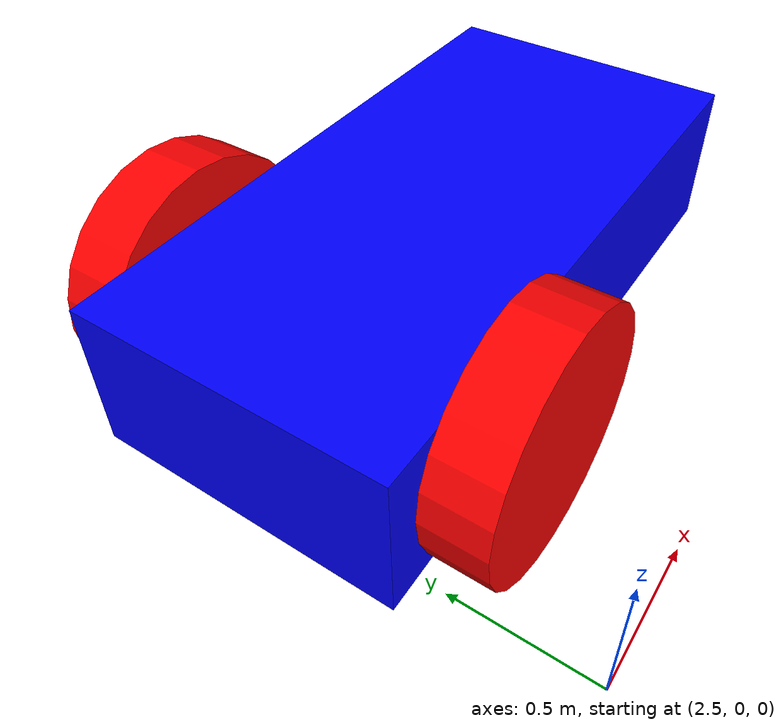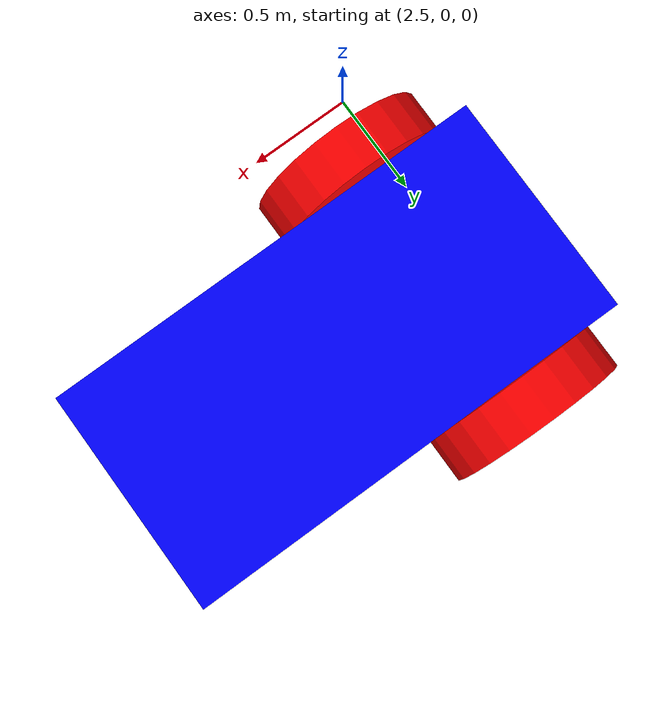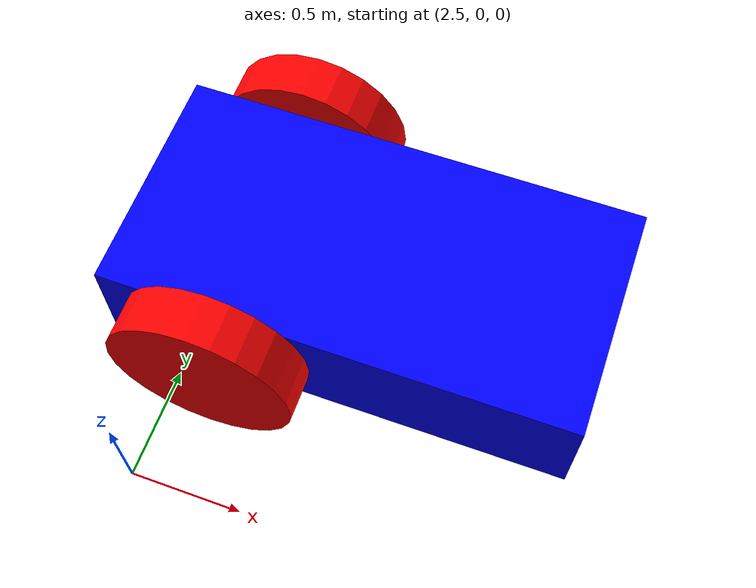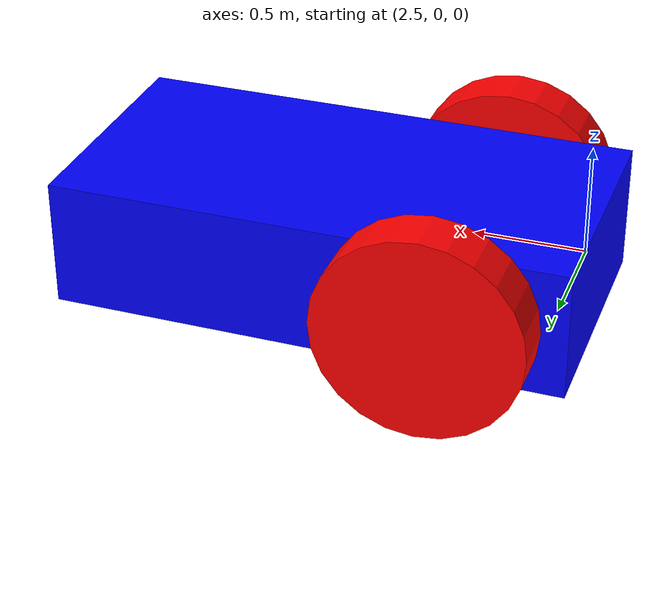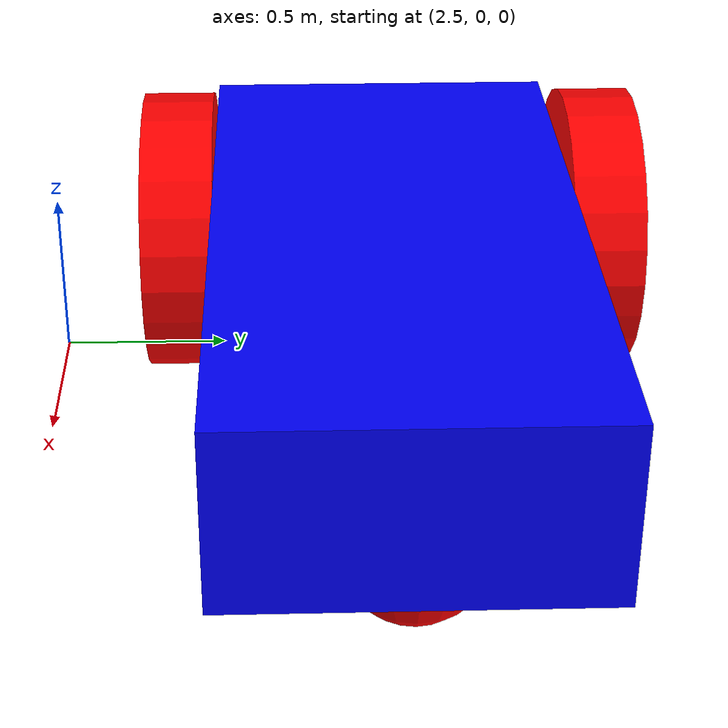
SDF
<sdf version="1.7">
 <world name="world_demo">
  <physics name="1ms" type="ignored">
   <max_step_size>0.01</max_step_size>
   <real_time_factor>1</real_time_factor>
  </physics>
  <plugin name="ignition::gazebo::systems::Physics" filename="libignition-gazebo-physics-system.so"/>
  <plugin name="ignition::gazebo::systems::UserCommands" filename="libignition-gazebo-user-commands-system.so"/>
  <plugin name="ignition::gazebo::systems::SceneBroadcaster" filename="libignition-gazebo-scene-broadcaster-system.so"/>
  <plugin name="ignition::gazebo::systems::Imu" filename="ignition-gazebo-imu-system"/>
  <plugin name="ignition::gazebo::systems::Sensors" filename="ignition-gazebo-sensors-system">
   <render_engine>ogre2</render_engine>
  </plugin>
  <scene>
   <ambient>1 1 1 1</ambient>
   <background>0.3 0.7 0.9 1</background>
   <shadows>0</shadows>
   <grid>1</grid>
  </scene>
  <model name="ground_plane">
   <static>1</static>
   <link name="link">
    <collision name="collision">
     <geometry><plane><normal>0 0 1</normal><size>1 1</size></plane></geometry>
    </collision>
   </link>
  </model>
  <model name="depot_collision">
   <static>1</static>
   <pose>7.19009 1.09982 0 0 0 0</pose>
   <link name="collision_link">
    <collision name="wall1">
     <pose>0 -7.6129 4.5 0 0 0</pose>
     <geometry><box><size>30.167 0.08 9</size></box></geometry>
    </collision>
    <collision name="wall2">
     <pose>0 7.2875 4.5 0 0 0</pose>
     <geometry><box><size>30.167 0.08 9</size></box></geometry>
    </collision>
    <collision name="wall3">
     <pose>-15 0 4.5 0 0 0</pose>
     <geometry><box><size>0.08 15.360 9</size></box></geometry>
    </collision>
    <collision name="wall4">
     <pose>15 0 4.5 0 0 0</pose>
     <geometry><box><size>0.08 15.360 9</size></box></geometry>
    </collision>
    <collision name="boxes1">
     <pose>0.22268 -4.7268 0.68506 0 0 0</pose>
     <geometry><box><size>1.288 1.422 1.288</size></box></geometry>
    </collision>
    <collision name="boxes2">
     <pose>3.1727 -4.7268 0.68506 0 0 0</pose>
     <geometry><box><size>1.288 1.422 1.288</size></box></geometry>
    </collision>
    <collision name="boxes3">
     <pose>5.95268 -4.7268 0.68506 0 0 0</pose>
     <geometry><box><size>1.288 1.422 1.288</size></box></geometry>
    </collision>
    <collision name="boxes4">
     <pose>8.55887 -4.7268 0.68506 0 0 0</pose>
     <geometry><box><size>1.288 1.422 1.288</size></box></geometry>
    </collision>
    <collision name="boxes5">
     <pose>11.326 -4.7268 0.68506 0 0 0</pose>
     <geometry><box><size>1.288 1.422 1.288</size></box></geometry>
    </collision>
    <collision name="boxes6">
     <pose>0.22268 -2.37448 0.68506 0 0 0</pose>
     <geometry><box><size>1.288 1.422 1.288</size></box></geometry>
    </collision>
    <collision name="boxes7">
     <pose>3.1727 -2.37448 0.68506 0 0 0</pose>
     <geometry><box><size>1.288 1.422 1.288</size></box></geometry>
    </collision>
    <collision name="boxes8">
     <pose>5.95268 -2.37448 0.68506 0 0 0</pose>
     <geometry><box><size>1.288 1.422 1.288</size></box></geometry>
    </collision>
    <collision name="boxes9">
     <pose>8.55887 -2.37448 0.68506 0 0 0</pose>
     <geometry><box><size>1.288 1.422 1.288</size></box></geometry>
    </collision>
    <collision name="boxes10">
     <pose>11.326 -2.37448 0.68506 0 0 0</pose>
     <geometry><box><size>1.288 1.422 1.288</size></box></geometry>
    </collision>
    <collision name="boxes11">
     <pose>-1.2268 4.1557 0.68506 0 0 -1.02799893</pose>
     <geometry><box><size>1.288 1.422 1.288</size></box></geometry>
    </collision>
    <collision name="pilar1">
     <pose>-7.5402 3.6151 1 0 0 0</pose>
     <geometry><box><size>0.465 0.465 2</size></box></geometry>
    </collision>
    <collision name="pilar2">
     <pose>7.4575 3.6151 1 0 0 0</pose>
     <geometry><box><size>0.465 0.465 2</size></box></geometry>
    </collision>
    <collision name="pilar3">
     <pose>-7.5402 -3.8857 1 0 0 0</pose>
     <geometry><box><size>0.465 0.465 2</size></box></geometry>
    </collision>
    <collision name="pilar4">
     <pose>7.4575 -3.8857 1 0 0 0</pose>
     <geometry><box><size>0.465 0.465 2</size></box></geometry>
    </collision>
    <collision name="pallet_mover1">
     <pose>-0.6144 -2.389 0.41838 0 0 0</pose>
     <geometry><box><size>0.363 0.440 0.719</size></box></geometry>
    </collision>
    <collision name="pallet_mover2">
     <pose>-1.6004 4.8225 0.41838 0 0 0</pose>
     <geometry><box><size>0.363 0.244 0.719</size></box></geometry>
    </collision>
    <collision name="stairs">
     <pose>13.018 3.1652 0.25 0 0 0</pose>
     <geometry><box><size>1.299 0.6 0.5</size></box></geometry>
    </collision>
    <collision name="shelfs1">
     <pose>1.4662 -0.017559 0.5 0 0 0</pose>
     <geometry><cylinder><radius>0.03</radius><length>1</length></cylinder></geometry>
    </collision>
    <collision name="shelfs2">
     <pose>2.6483 -0.017559 0.5 0 0 0</pose>
     <geometry><cylinder><radius>0.03</radius><length>1</length></cylinder></geometry>
    </collision>
    <collision name="shelfs3">
     <pose>5.3247 -0.017559 0.5 0 0 0</pose>
     <geometry><cylinder><radius>0.03</radius><length>1</length></cylinder></geometry>
    </collision>
    <collision name="shelfs4">
     <pose>6.5063 -0.017559 0.5 0 0 0</pose>
     <geometry><cylinder><radius>0.03</radius><length>1</length></cylinder></geometry>
    </collision>
    <collision name="shelfs5">
     <pose>9.0758 -0.017559 0.5 0 0 0</pose>
     <geometry><cylinder><radius>0.03</radius><length>1</length></cylinder></geometry>
    </collision>
   </link>
  </model>
  <include>
   <uri>model://./models/test_car</uri>
   <name>Test_car</name>
   <pose>2.75268 1.0014 0.132279 0 0 0</pose>
  </include>
 </world>
</sdf>

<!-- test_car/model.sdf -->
<sdf version="1.8">
    <model name='vehicle_blue' canonical_link='chassis'>
            <pose>0 0 0 0 0 0</pose>
            <link name='chassis'>
                <pose relative_to='__model__'>0.5 0 0.4 0 0 0</pose>
                <inertial> <!--inertial properties of the link mass, inertia matix-->
                    <mass>1.14395</mass>
                    <inertia>
                        <ixx>0.095329</ixx>
                        <ixy>0</ixy>
                        <ixz>0</ixz>
                        <iyy>0.381317</iyy>
                        <iyz>0</iyz>
                        <izz>0.476646</izz>
                    </inertia>
                </inertial>
                <visual name='visual'>
                    <geometry>
                        <box>
                            <size>2.0 1.0 0.5</size>
                        </box>
                    </geometry>
                    <!--let's add color to our link-->
                    <material>
                        <ambient>0.0 0.0 1.0 1</ambient>
                        <diffuse>0.0 0.0 1.0 1</diffuse>
                        <specular>0.0 0.0 1.0 1</specular>
                    </material>
                </visual>
                <collision name='collision'>
                    <geometry>
                        <box>
                            <size>2.0 1.0 0.5</size>
                        </box>
                    </geometry>
                </collision>
                <sensor name="imu_sensor" type="imu">
                    <always_on>1</always_on>
                    <update_rate>1</update_rate>
                    <visualize>true</visualize>
                    <topic>imu</topic>
                </sensor>
                <frame name="lidar_frame" attached_to='chassis'>
                    <pose>0.8 0 0.5 0 0 0</pose>
                </frame>

                <sensor name='gpu_lidar' type='gpu_lidar'>"
                    <pose relative_to='lidar_frame'>0 0 0 0 0 0</pose>
                    <topic>lidar</topic>
                    <update_rate>10</update_rate>
                    <ray>
                        <scan>
                            <horizontal>
                                <samples>300</samples>
                                <resolution>1</resolution>
                                <min_angle>-1.57</min_angle>
                                <max_angle>1.57</max_angle>
                            </horizontal>
                            <vertical>
                                <samples>1</samples>
                                <resolution>0.01</resolution>
                                <min_angle>0.1</min_angle>
                                <max_angle>0.1</max_angle>
                            </vertical>
                        </scan>
                        <range>
                            <min>0.08</min>
                            <max>30.0</max>
                            <resolution>0.01</resolution>
                        </range>
                    </ray>
                    <always_on>1</always_on>
                    <visualize>true</visualize>
                </sensor>

                <frame name="camera_frame" attached_to='chassis'>
                    <pose>2 0 1 0 0 0</pose>
                </frame>

                <sensor name="left_camera" type="camera">
                    <pose relative_to='camera_frame'>0 0.5 0.5 0 0 0</pose>

                    <camera>
                        <horizontal_fov>1.047</horizontal_fov>
                        <image>
                            <width>1280</width>
                            <height>720</height>
                        </image>
                        <clip>
                            <near>0.1</near>
                            <far>100</far>
                        </clip>
                    </camera>
                    <always_on>1</always_on>
                    <update_rate>30</update_rate>
                    <visualize>true</visualize>
                    <topic>camera_l</topic>
                </sensor>

                <sensor name="right_camera" type="camera">
                    <pose relative_to='camera_frame'>0 -0.5 0.5 0 0 0</pose>

                    <camera>
                        <horizontal_fov>1.047</horizontal_fov>
                        <image>
                            <width>1280</width>
                            <height>720</height>
                        </image>
                        <clip>
                            <near>0.1</near>
                            <far>100</far>
                        </clip>
                    </camera>
                    <always_on>1</always_on>
                    <update_rate>30</update_rate>
                    <visualize>true</visualize>
                    <topic>camera_r</topic>
                </sensor>

            </link>

            <link name='left_wheel'>
                <pose relative_to="chassis">-0.5 0.6 0 -1.5707 0 0</pose>
                <inertial>
                    <mass>1</mass>
                    <inertia>
                        <ixx>0.043333</ixx>
                        <ixy>0</ixy>
                        <ixz>0</ixz>
                        <iyy>0.043333</iyy>
                        <iyz>0</iyz>
                        <izz>0.08</izz>
                    </inertia>
                </inertial>
                <visual name='visual'>
                    <geometry>
                        <cylinder>
                            <radius>0.4</radius>
                            <length>0.2</length>
                        </cylinder>
                    </geometry>
                    <material>
                        <ambient>1.0 0.0 0.0 1</ambient>
                        <diffuse>1.0 0.0 0.0 1</diffuse>
                        <specular>1.0 0.0 0.0 1</specular>
                    </material>
                </visual>
                <collision name='collision'>
                    <geometry>
                        <cylinder>
                            <radius>0.4</radius>
                            <length>0.2</length>
                        </cylinder>
                    </geometry>
                </collision>
            </link>

            <!--The same as left wheel but with different position-->
            <link name='right_wheel'>
                <pose relative_to="chassis">-0.5 -0.6 0 -1.5707 0 0</pose> <!--angles are in radian-->
                <inertial>
                    <mass>1</mass>
                    <inertia>
                        <ixx>0.043333</ixx>
                        <ixy>0</ixy>
                        <ixz>0</ixz>
                        <iyy>0.043333</iyy>
                        <iyz>0</iyz>
                        <izz>0.08</izz>
                    </inertia>
                </inertial>
                <visual name='visual'>
                    <geometry>
                        <cylinder>
                            <radius>0.4</radius>
                            <length>0.2</length>
                        </cylinder>
                    </geometry>
                    <material>
                        <ambient>1.0 0.0 0.0 1</ambient>
                        <diffuse>1.0 0.0 0.0 1</diffuse>
                        <specular>1.0 0.0 0.0 1</specular>
                    </material>
                </visual>
                <collision name='collision'>
                    <geometry>
                        <cylinder>
                            <radius>0.4</radius>
                            <length>0.2</length>
                        </cylinder>
                    </geometry>
                </collision>
            </link>

            <frame name="caster_frame" attached_to='chassis'>
                <pose>0.8 0 -0.2 0 0 0</pose>
            </frame>
            <!--caster wheel-->
            <link name='caster'>
                <pose relative_to='caster_frame'/>
                <inertial>
                    <mass>1</mass>
                    <inertia>
                        <ixx>0.016</ixx>
                        <ixy>0</ixy>
                        <ixz>0</ixz>ign
                        <iyy>0.016</iyy>
                        <iyz>0</iyz>
                        <izz>0.016</izz>
                    </inertia>
                </inertial>
                <visual name='visual'>
                    <geometry>
                        <sphere>
                            <radius>0.2</radius>
                        </sphere>
                    </geometry>
                    <material>
                        <ambient>0.5 1 0.5 1</ambient>
                        <diffuse>1.0 0.0 0.0 1</diffuse>
                        <specular>1.0 1 0.0 1</specular>
                    </material>
                </visual>
                <collision name='collision'>
                    <geometry>
                        <sphere>
                            <radius>0.2</radius>
                        </sphere>
                    </geometry>
                </collision>
            </link>

            <joint name='left_wheel_joint' type='revolute'>
                <pose relative_to='left_wheel'/>
                <parent>chassis</parent>
                <child>left_wheel</child>
                <axis>
                    <xyz expressed_in='__model__'>0 1 0</xyz> <!--can be defined as any frame or even arbitrary frames-->
                    <limit>
                        <lower>-1.79769e+308</lower>    <!--negative infinity-->
                        <upper>1.79769e+308</upper>     <!--positive infinity-->
                    </limit>
                </axis>
            </joint>

            <joint name='right_wheel_joint' type='revolute'>
                <pose relative_to='right_wheel'/>
                <parent>chassis</parent>
                <child>right_wheel</child>
                <axis>
                    <xyz expressed_in='__model__'>0 1 0</xyz>
                    <limit>
                        <lower>-1.79769e+308</lower>    <!--negative infinity-->
                        <upper>1.79769e+308</upper>     <!--positive infinity-->
                    </limit>
                </axis>
            </joint>

            <joint name='caster_wheel' type='ball'>
                <parent>chassis</parent>
                <child>caster</child>
            </joint>

            <plugin
                filename="libignition-gazebo-diff-drive-system.so"
                name="ignition::gazebo::systems::DiffDrive">
                <left_joint>left_wheel_joint</left_joint>
                <right_joint>right_wheel_joint</right_joint>
                <wheel_separation>1.2</wheel_separation>
                <wheel_radius>0.4</wheel_radius>
                <odom_publish_frequency>10</odom_publish_frequency>
                <topic>cmd_vel</topic>
            </plugin>

    </model>
</sdf>
